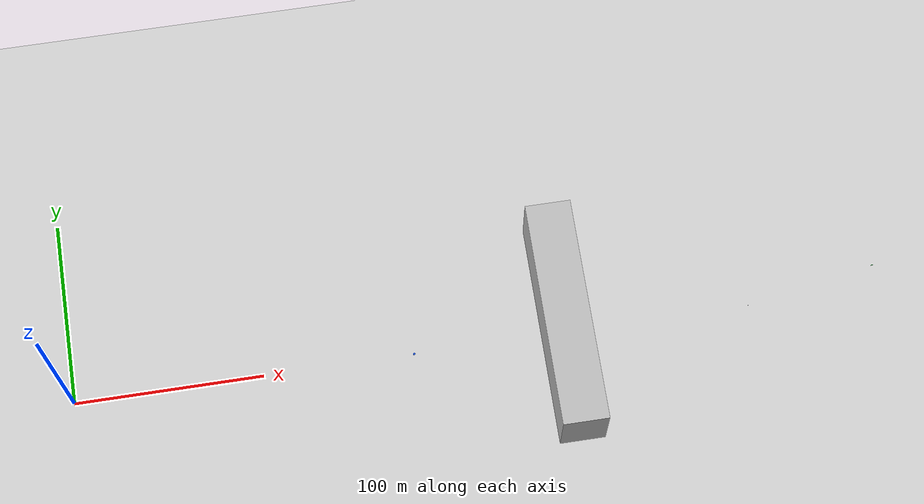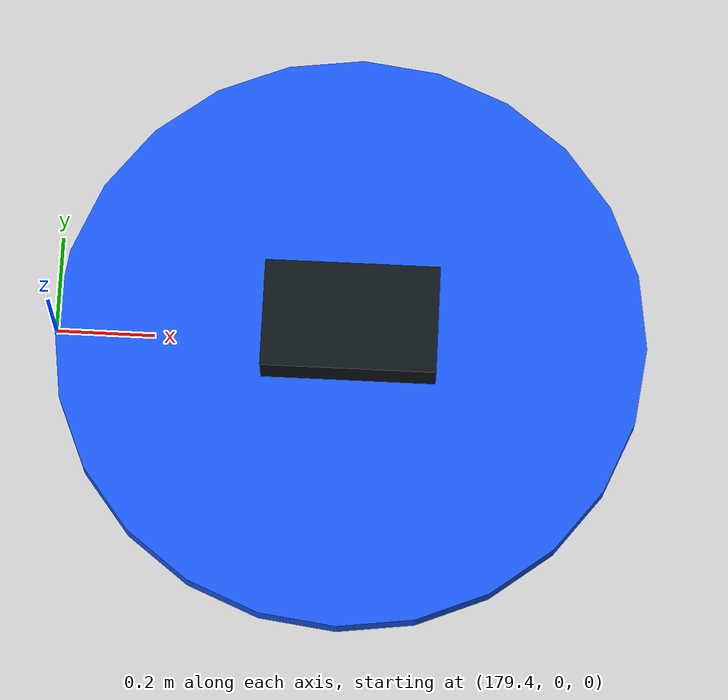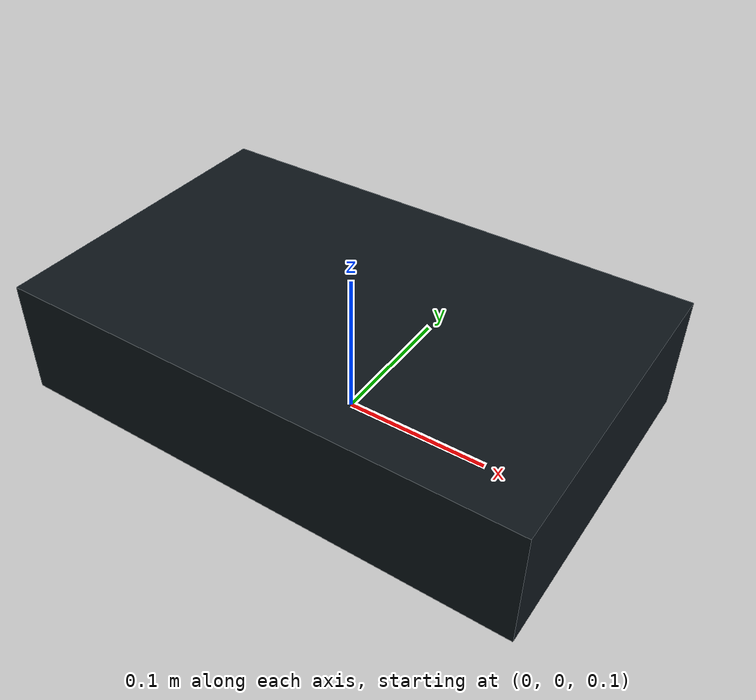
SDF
<?xml version="1.0"?>
<sdf version="1.10">
  <world name="jneo_swarm_relay">
    <gravity>0 0 -9.80665</gravity>
    <scene>
      <ambient>0.42 0.43 0.44 1</ambient>
      <background>0.70 0.76 0.82 1</background>
      <shadows>true</shadows>
    </scene>
    <wind>
      <linear_velocity>1.5 0.2 0</linear_velocity>
    </wind>
    <model name="terrain">
      <static>true</static>
      <link name="ground">
        <collision name="collision"><geometry><plane><normal>0 0 1</normal><size>800 240</size></plane></geometry></collision>
        <visual name="visual"><geometry><plane><normal>0 0 1</normal><size>800 240</size></plane></geometry></visual>
      </link>
    </model>
    <model name="relay_occluder">
      <pose>260 0 18 0 0 0</pose>
      <static>true</static>
      <link name="ridge">
        <collision name="collision"><geometry><box><size>24 120 36</size></box></geometry></collision>
        <visual name="visual"><geometry><box><size>24 120 36</size></box></geometry></visual>
      </link>
    </model>
    <include><name>uav_1</name><pose>0 0 0.15 0 0 0</pose><uri>model://jneo-fpv-copter</uri></include>
    <include><name>uav_2</name><pose>180 0 0.15 0 0 0</pose><uri>model://jneo-fpv-copter</uri></include>
    <include><name>uav_3</name><pose>360 0 0.15 0 0 0</pose><uri>model://jneo-fpv-copter</uri></include>
    <include><name>target_1</name><pose>430 12 1.0 0 0 3.14159</pose><uri>model://virtual-observation-target</uri></include>
    <include><name>relay_marker_1</name><pose>180 0 0.03 0 0 0</pose><uri>model://relay-marker</uri></include>
    <!-- Evaluator-only metadata: target reports must traverse radio events, not ROS/DDS global state. -->
  </world>
</sdf>

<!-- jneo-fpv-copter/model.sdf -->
<sdf version="1.10">
  <model name="jneo-fpv-copter">
    <pose>0 0 0.15 0 0 0</pose>
    <link name="base_link">
      <inertial>
        <mass>1.45</mass>
        <inertia>
          <ixx>0.029</ixx>
          <iyy>0.029</iyy>
          <izz>0.055</izz>
        </inertia>
      </inertial>
      <collision name="body_collision">
        <geometry>
          <box>
            <size>0.35 0.22 0.08</size>
          </box>
        </geometry>
      </collision>
      <visual name="body_visual">
        <geometry>
          <box>
            <size>0.35 0.22 0.08</size>
          </box>
        </geometry>
        <material>
          <ambient>0.05 0.08 0.10 1</ambient>
          <diffuse>0.05 0.08 0.10 1</diffuse>
        </material>
      </visual>
      <sensor name="fpv_camera" type="camera">
        <pose>0.22 0 0.03 0 0 0</pose>
        <camera>
          <horizontal_fov>1.22173</horizontal_fov>
          <image>
            <width>960</width>
            <height>540</height>
            <format>R8G8B8</format>
          </image>
          <clip>
            <near>0.05</near>
            <far>500</far>
          </clip>
        </camera>
        <always_on>true</always_on>
        <update_rate>30</update_rate>
        <topic>fpv/image</topic>
      </sensor>
      <sensor name="imu" type="imu">
        <always_on>true</always_on>
        <update_rate>200</update_rate>
        <topic>imu</topic>
      </sensor>
      <sensor name="range" type="gpu_lidar">
        <pose>0.18 0 -0.02 0 0 0</pose>
        <topic>range/scan</topic>
        <update_rate>15</update_rate>
        <lidar>
          <scan>
            <horizontal>
              <samples>64</samples>
              <min_angle>-0.6</min_angle>
              <max_angle>0.6</max_angle>
            </horizontal>
          </scan>
          <range>
            <min>0.2</min>
            <max>30.0</max>
          </range>
        </lidar>
      </sensor>
    </link>
    <plugin filename="ArduPilotPlugin" name="ardupilot_gazebo::ArduPilotPlugin">
      <fdm_addr>127.0.0.1</fdm_addr>
      <fdm_port_in>9002</fdm_port_in>
      <fdm_port_out>9003</fdm_port_out>
      <modelXYZToAirplaneXForwardZDown>0 0 0 3.141593 0 0</modelXYZToAirplaneXForwardZDown>
      <gazeboXYZToNED>0 0 0 3.141593 0 1.570796</gazeboXYZToNED>
    </plugin>
  </model>
</sdf>

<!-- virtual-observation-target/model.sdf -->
<sdf version="1.10">
  <model name="virtual-observation-target">
    <static>true</static>
    <link name="target_panel">
      <visual name="target_pattern">
        <geometry>
          <box>
            <size>1.2 0.08 1.2</size>
          </box>
        </geometry>
        <material>
          <ambient>0.0 0.85 0.15 1</ambient>
          <diffuse>0.0 0.85 0.15 1</diffuse>
          <specular>0.8 0.8 0.8 1</specular>
        </material>
      </visual>
      <collision name="target_collision">
        <geometry>
          <box>
            <size>1.2 0.08 1.2</size>
          </box>
        </geometry>
      </collision>
    </link>
  </model>
</sdf>

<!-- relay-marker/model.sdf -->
<sdf version="1.10">
  <model name="relay-marker">
    <static>true</static>
    <link name="marker">
      <visual name="marker_visual">
        <geometry>
          <cylinder>
            <radius>0.6</radius>
            <length>0.05</length>
          </cylinder>
        </geometry>
        <material>
          <ambient>0.1 0.35 0.95 1</ambient>
          <diffuse>0.1 0.35 0.95 1</diffuse>
        </material>
      </visual>
    </link>
  </model>
</sdf>
